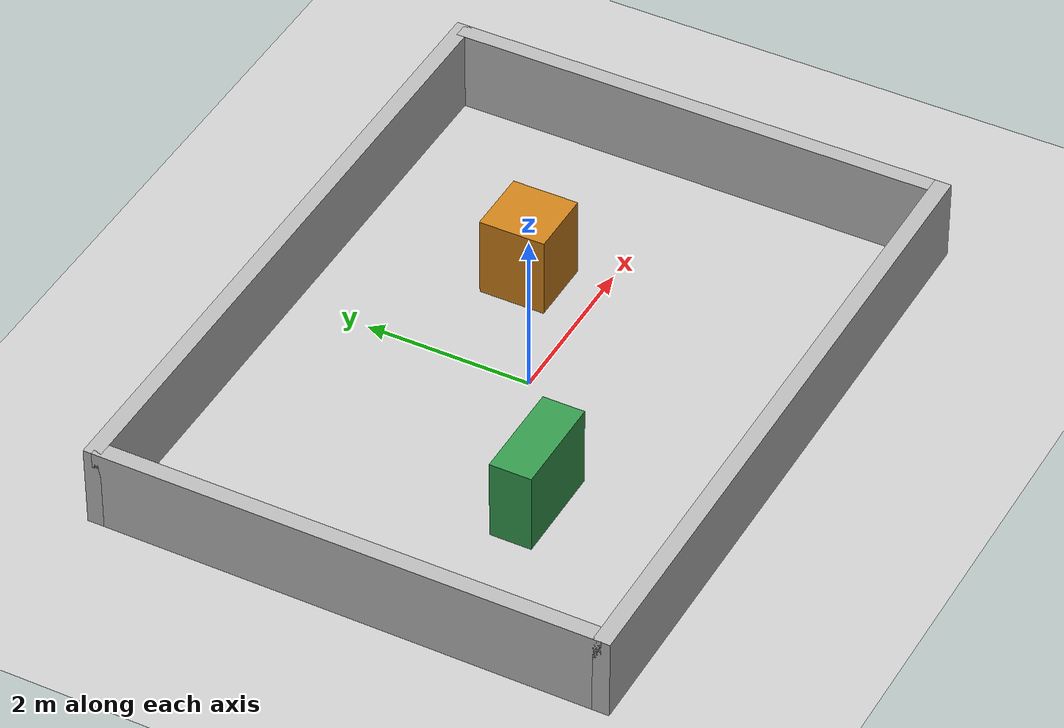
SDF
<?xml version="1.0"?>
<sdf version="1.6">
  <world name="mapping_room">
    <include><uri>model://ground_plane</uri></include>
    <include><uri>model://sun</uri></include>
    <physics name="default_physics" type="ode">
      <max_step_size>0.001</max_step_size><real_time_factor>1.0</real_time_factor>
    </physics>
    <!-- Wall centrelines bound an 8 x 6 m room; clear interior is 7.8 x 5.8 m. -->
    <model name="room_walls">
      <static>true</static>
      <link name="north">
        <pose>0 3 0.5 0 0 0</pose>
        <collision name="collision"><geometry><box><size>8.2 0.2 1</size></box></geometry></collision>
        <visual name="visual"><geometry><box><size>8.2 0.2 1</size></box></geometry></visual>
      </link>
      <link name="south">
        <pose>0 -3 0.5 0 0 0</pose>
        <collision name="collision"><geometry><box><size>8.2 0.2 1</size></box></geometry></collision>
        <visual name="visual"><geometry><box><size>8.2 0.2 1</size></box></geometry></visual>
      </link>
      <link name="east">
        <pose>4 0 0.5 0 0 0</pose>
        <collision name="collision"><geometry><box><size>0.2 6 1</size></box></geometry></collision>
        <visual name="visual"><geometry><box><size>0.2 6 1</size></box></geometry></visual>
      </link>
      <link name="west">
        <pose>-4 0 0.5 0 0 0</pose>
        <collision name="collision"><geometry><box><size>0.2 6 1</size></box></geometry></collision>
        <visual name="visual"><geometry><box><size>0.2 6 1</size></box></geometry></visual>
      </link>
    </model>
    <model name="square_obstacle">
      <static>true</static><pose>1.5 0.8 0.5 0 0 0</pose>
      <link name="body">
        <collision name="collision"><geometry><box><size>0.8 0.8 1</size></box></geometry></collision>
        <visual name="visual">
          <geometry><box><size>0.8 0.8 1</size></box></geometry>
          <material><ambient>0.8 0.5 0.1 1</ambient><diffuse>0.8 0.5 0.1 1</diffuse></material>
        </visual>
      </link>
    </model>
    <model name="long_obstacle">
      <static>true</static><pose>-1.7 -1 0.5 0 0 0</pose>
      <link name="body">
        <collision name="collision"><geometry><box><size>1.2 0.5 1</size></box></geometry></collision>
        <visual name="visual">
          <geometry><box><size>1.2 0.5 1</size></box></geometry>
          <material><ambient>0.2 0.6 0.3 1</ambient><diffuse>0.2 0.6 0.3 1</diffuse></material>
        </visual>
      </link>
    </model>
  </world>
</sdf>
